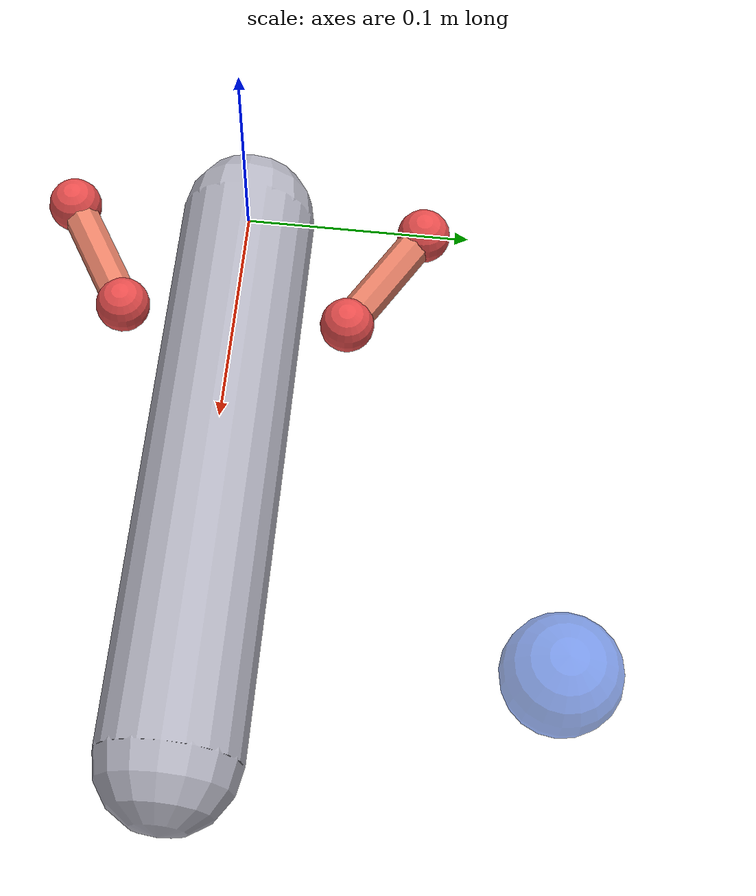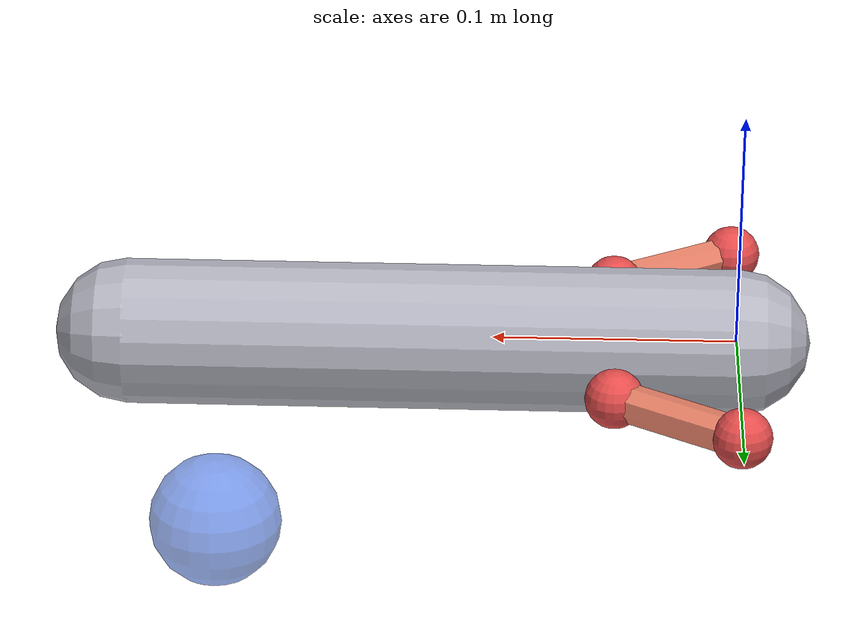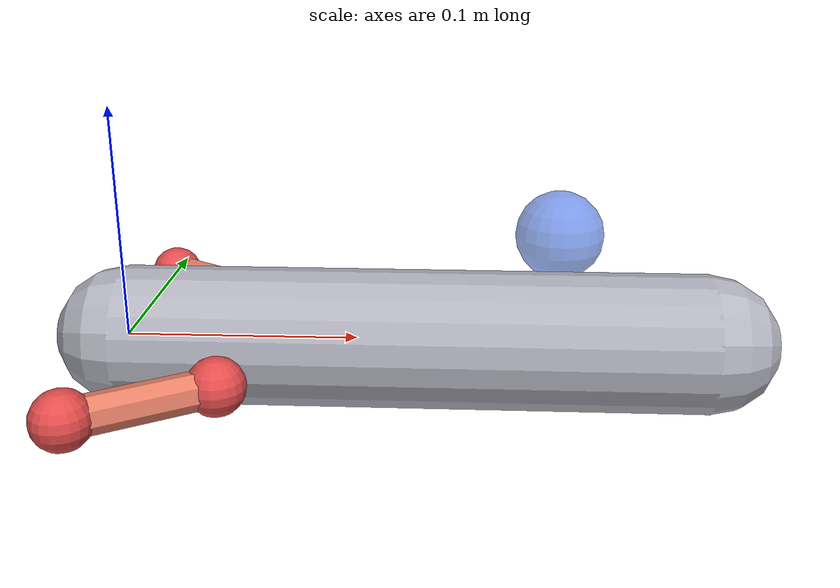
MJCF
<mujoco model="arm1_muscle">
  <compiler angle="radian" autolimits="true"/>
  <option timestep="0.002" integrator="implicitfast"/>
  <default>
    <joint type="hinge" axis="0 0 1" damping="0.2" limited="true"/>
    <geom type="capsule" size="0.03" rgba="0.7 0.7 0.75 1" density="800"/>
    <site size="0.012" rgba="0.9 0.3 0.3 1"/>
    <muscle ctrllimited="true" ctrlrange="0 1"/>
    <tendon width="0.008" rgba="0.9 0.5 0.4 1"/>
  </default>
  <worldbody>
    <light pos="0 0 2"/>
    <geom name="floor" type="plane" pos="0 0 -1" size="2 2 0.1" rgba="0.3 0.3 0.35 1"/>
    <site name="s_up"   pos="0 0.08 0"/>
    <site name="s_down" pos="0 -0.08 0"/>
    <body name="upper" pos="0 0 0">
      <joint name="shoulder" range="-2.0 2.0"/>
      <geom fromto="0 0 0 0.25 0 0"/>
      <site name="u_up"   pos="0.05 0.05 0"/>
      <site name="u_down" pos="0.05 -0.05 0"/>
      <site name="tip" pos="0.25 0 0" size="0.02" rgba="0.2 0.8 0.3 1"/>
    </body>
    <body name="target" mocap="true" pos="0.2 0.15 0">
      <site name="target_site" pos="0 0 0" size="0.025" rgba="0.2 0.4 0.9 0.6"/>
    </body>
  </worldbody>
  <tendon>
    <spatial name="t_sh_flex"><site site="s_up"/><site site="u_up"/></spatial>
    <spatial name="t_sh_ext"> <site site="s_down"/><site site="u_down"/></spatial>
  </tendon>
  <actuator>
    <muscle name="sh_flex" tendon="t_sh_flex"/>
    <muscle name="sh_ext"  tendon="t_sh_ext"/>
  </actuator>
</mujoco>
